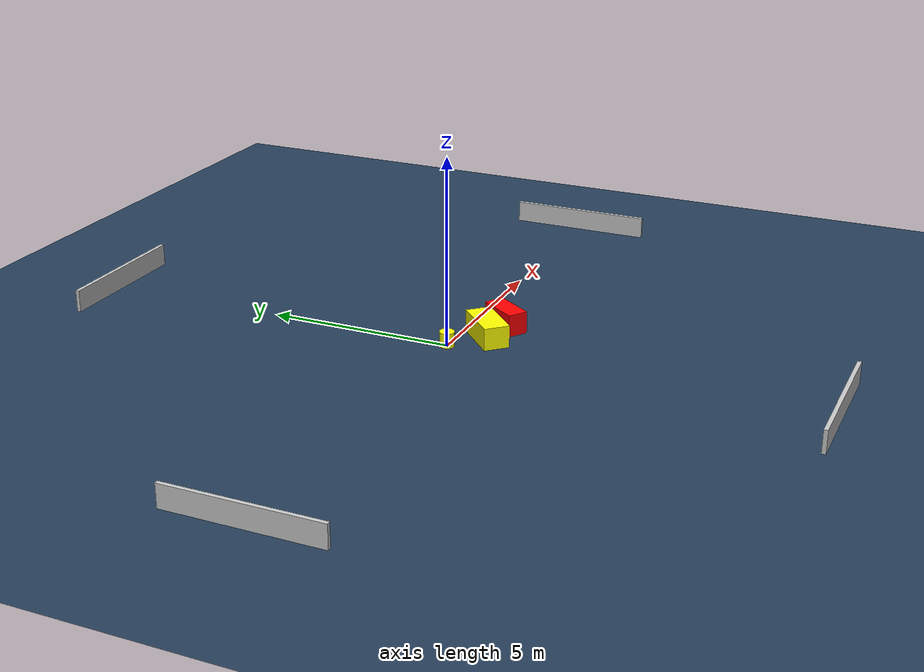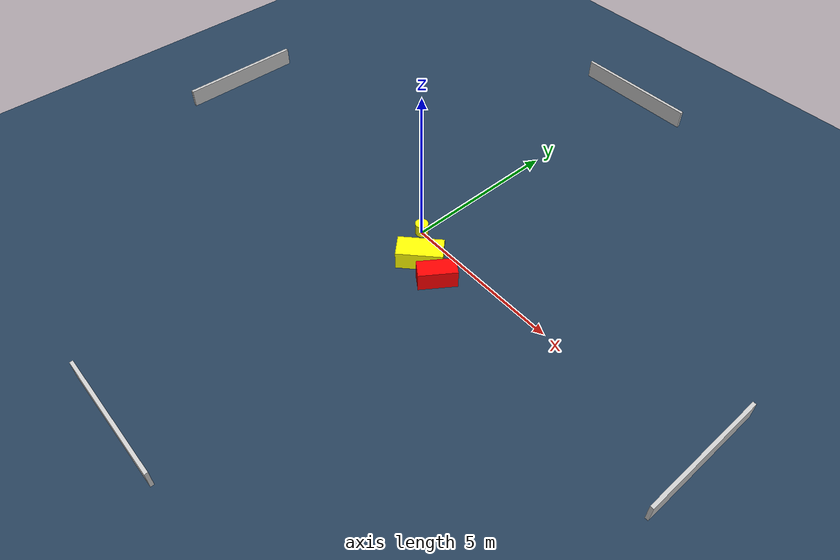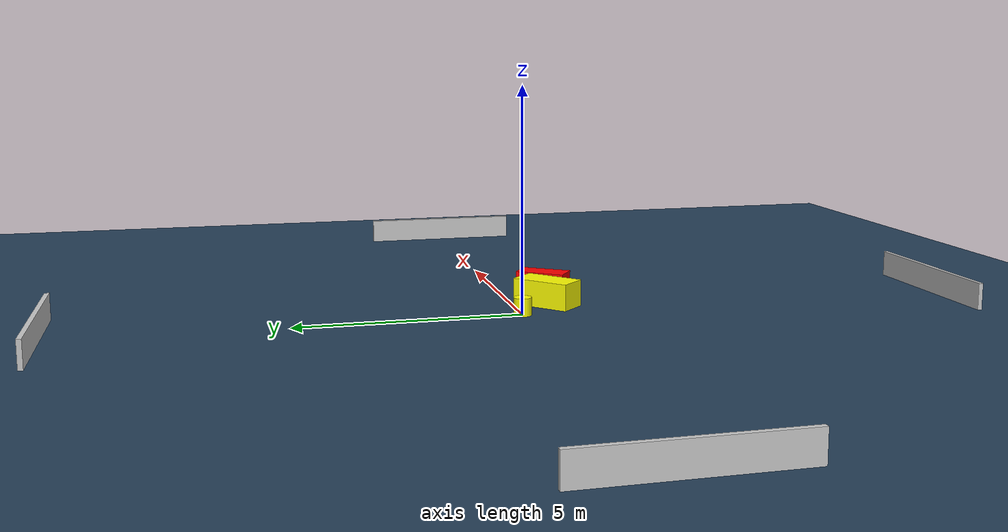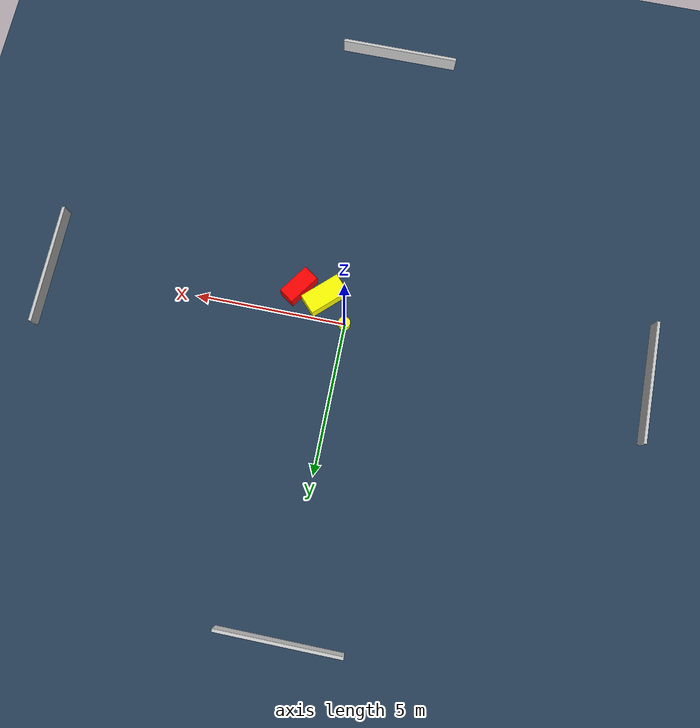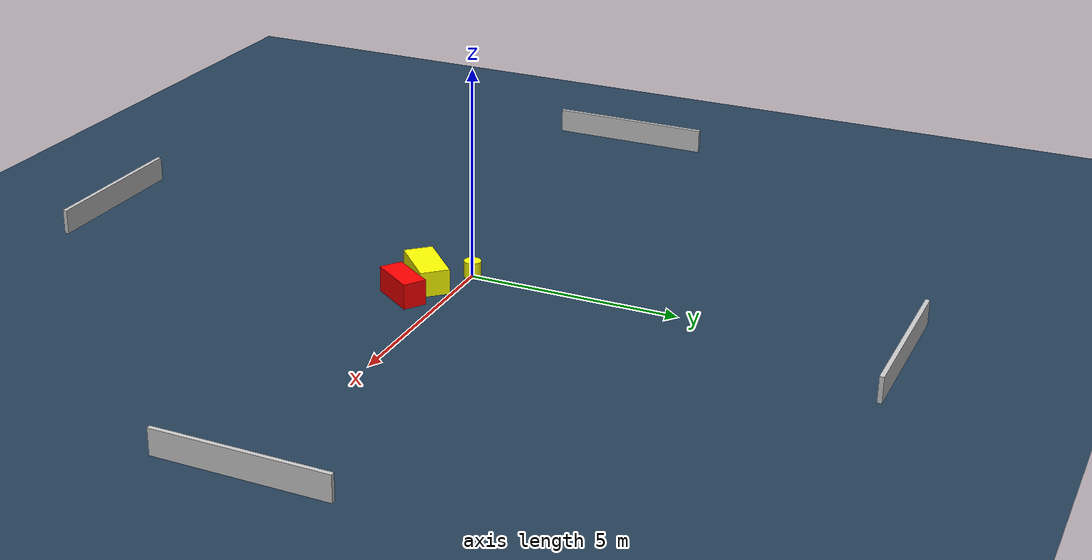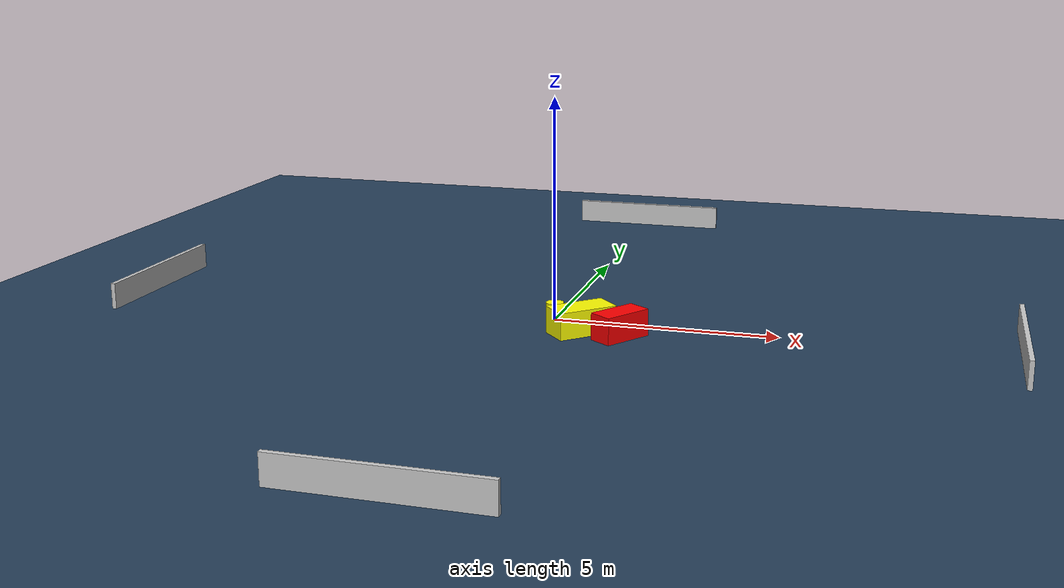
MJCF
<?xml version="1.0" ?>
<mujoco model="generated_environment">
  <option timestep="0.01" integrator="RK4" cone="elliptic"/>
  <default>
    <geom density="1"/>
  </default>
  <asset>
    <texture builtin="gradient" height="3072" name="skybox" rgb1="0.3 0.5 0.7" rgb2="0 0 0" type="skybox" width="512"/>
    <texture builtin="checker" height="300" name="groundplane" rgb1="0.2 0.3 0.4" rgb2="0.1 0.2 0.3" type="2d" width="300"/>
    <material name="groundplane" reflectance="0.2" texrepeat="5 5" texture="groundplane"/>
  </asset>
  <worldbody>
    <light dir="0 0 -1" directional="true" pos="0 0 1.5"/>
    <geom condim="3" friction="0.5 0.005 0.001" material="groundplane" name="floor" pos="0 0 0" size="0 0 0.05" type="plane"/>
    <body name="walls">
      <geom name="wall_1" condim="4" pos="-10.0 0.0 0.3" rgba="0.800000011920929 0.800000011920929 0.800000011920929 1.0" size="0.05 2.0 0.3" type="box"/>
      <geom name="wall_2" condim="4" pos="10.0 0.0 0.3" rgba="0.800000011920929 0.800000011920929 0.800000011920929 1.0" size="0.05 2.0 0.3" type="box"/>
      <geom name="wall_3" condim="4" pos="0.0 -10.0 0.3" rgba="0.800000011920929 0.800000011920929 0.800000011920929 1.0" size="2.0 0.05 0.3" type="box"/>
      <geom name="wall_4" condim="4" pos="0.0 10.0 0.3" rgba="0.800000011920929 0.800000011920929 0.800000011920929 1.0" size="2.0 0.05 0.3" type="box"/>
    </body>
    <body name="robot">
      <joint name="joint_x" type="slide" pos="0 0 0" axis="1 0 0"/>
      <joint name="joint_y" type="slide" pos="0 0 0" axis="0 1 0"/>
      <geom name="robot" type="cylinder" pos="0.0 0.0 0.2" size="0.2 0.2 0.0" mass="5.0" friction="1.0 0.005 0.0001" condim="4" rgba="1.0 1.0 0.0 1.0"/>
    </body>
    <body name="obstacle_1_movable">
      <geom name="obstacle_1_movable" condim="4" pos="0.8155138917087761 -0.7755293219567639 0.3" euler="0 0 133.3020807207923" friction="0.0 0.005 0.001" rgba="1.0 1.0 0.0 1.0" size="0.34418014379722206 0.6858355596230119 0.3" type="box" mass="0.1"/>
      <joint type="free"/>
    </body>
    <body name="obstacle_2_static">
      <geom name="obstacle_2_static" condim="4" pos="1.7081460524345542 -0.9192324252165426 0.3" euler="0 0 325.5067409394661" friction="0.0 0.005 0.001" rgba="1.0 0.0 0.0 1.0" size="0.27611457445278326 0.5744960653669905 0.3" type="box"/>
    </body>
  </worldbody>
  <actuator>
    <motor name="actuator_x" joint="joint_x" gear="1" ctrlrange="-1 1"/>
    <motor name="actuator_y" joint="joint_y" gear="1" ctrlrange="-1 1"/>
  </actuator>
</mujoco>
